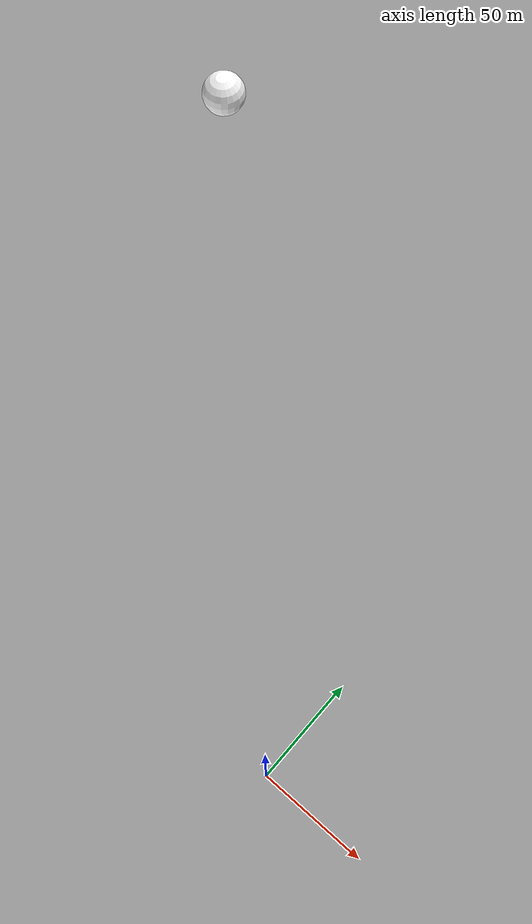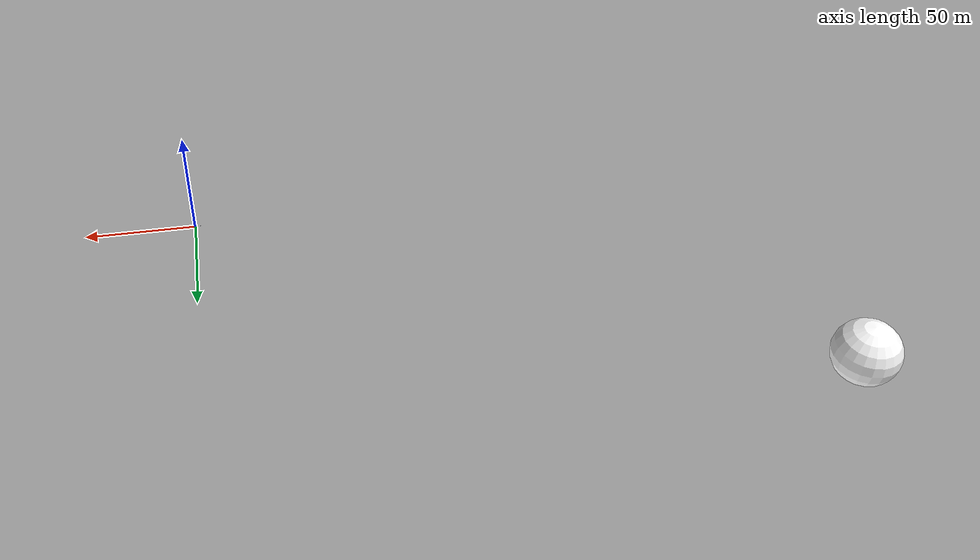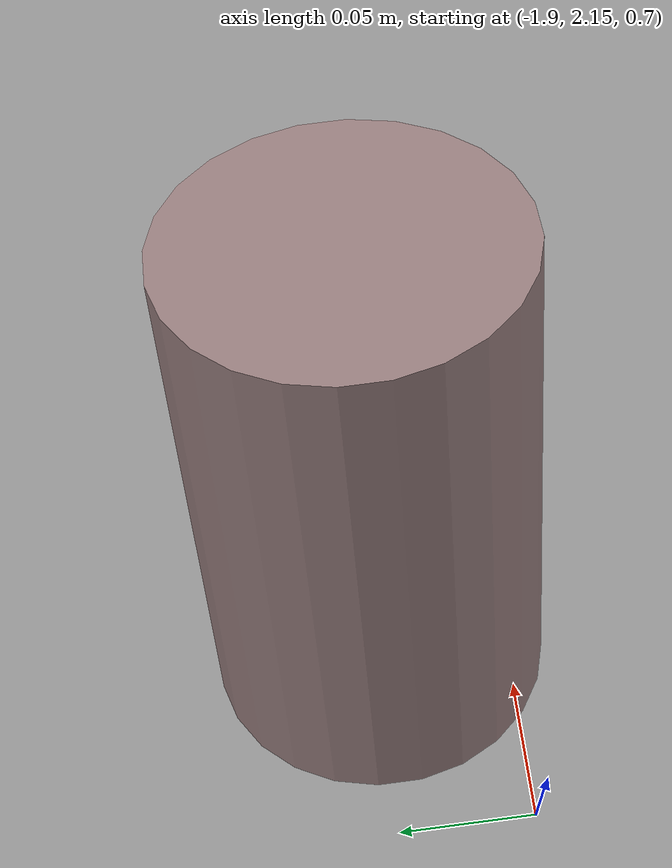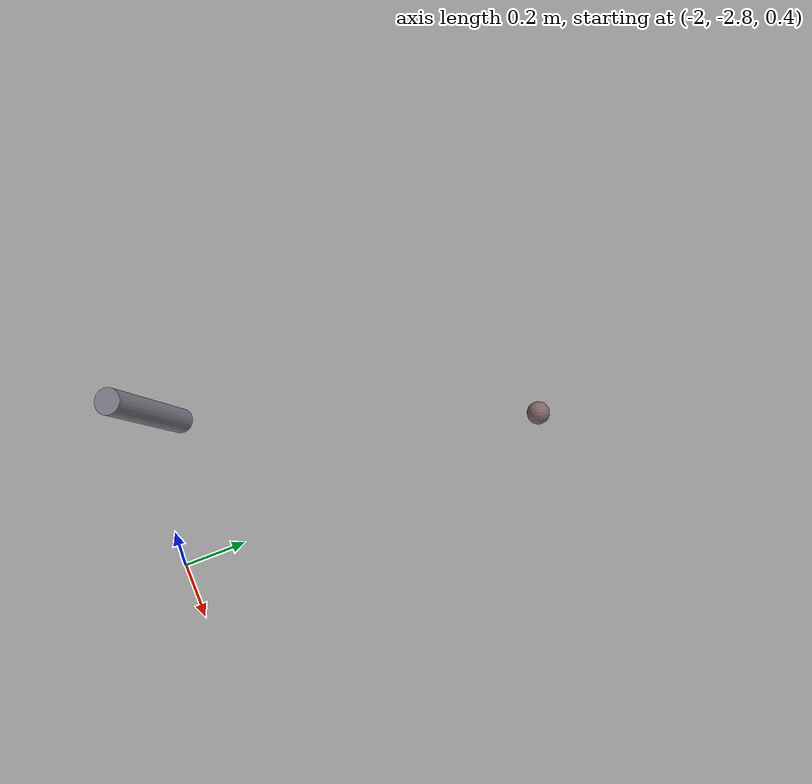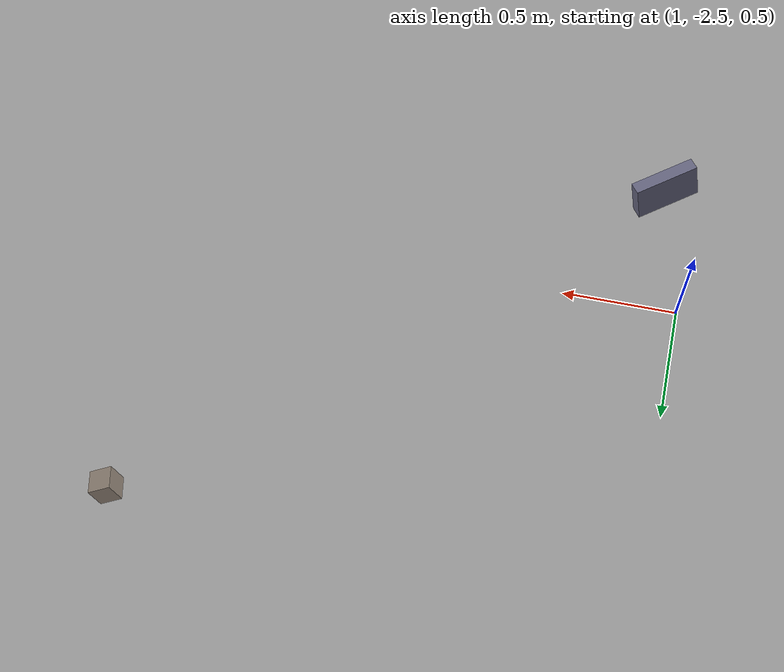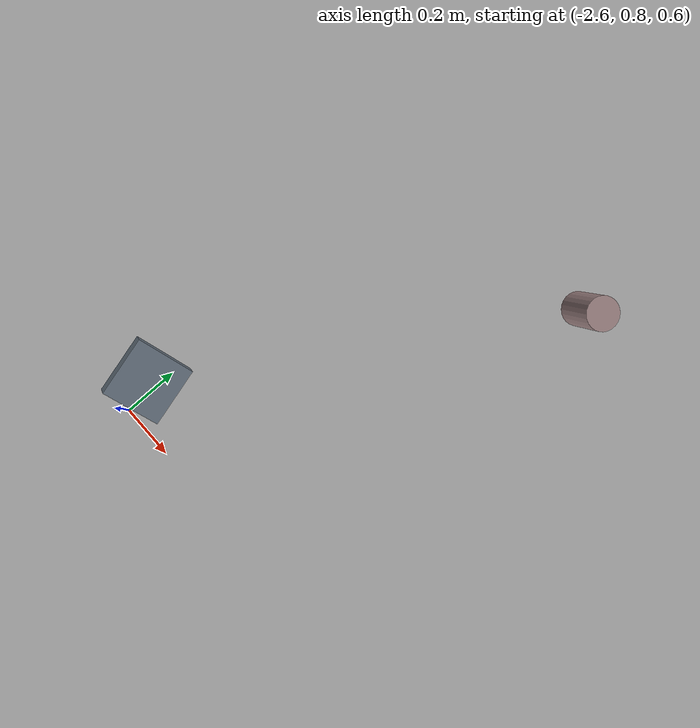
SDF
<sdf version="1.8">
 <world name="space_world">
  <gravity>0 0 0</gravity>
  <physics name="1ms" type="ignored">
   <max_step_size>0.001</max_step_size>
   <real_time_factor>1.0</real_time_factor>
   <real_time_update_rate>1000</real_time_update_rate>
  </physics>
  <scene>
   <ambient>0.4 0.4 0.4 1.0</ambient>
   <background>0.0 0.0 0.0 1.0</background>
   <grid>false</grid>
   <shadows>true</shadows>
  </scene>
  <plugin filename="gz-sim-physics-system" name="gz::sim::systems::Physics"/>
  <plugin filename="gz-sim-sensors-system" name="gz::sim::systems::Sensors">
   <render_engine>ogre2</render_engine>
  </plugin>
  <plugin filename="gz-sim-scene-broadcaster-system" name="gz::sim::systems::SceneBroadcaster"/>
  <plugin filename="gz-sim-user-commands-system" name="gz::sim::systems::UserCommands"/>
  <light type="directional" name="sun">
   <pose>-200 200 100 0 0 0</pose>
   <diffuse>1.0 1.0 1.0 1</diffuse>
   <specular>0.8 0.8 0.8 1</specular>
   <attenuation>
    <range>10000</range>
    <constant>1.0</constant>
    <linear>0.0</linear>
    <quadratic>0.0</quadratic>
   </attenuation>
   <direction>0.667 -0.667 -0.333</direction>
  </light>
  <model name="sun_visual">
   <static>true</static>
   <pose>-200 200 100 0 0 0</pose>
   <link name="link">
    <visual name="visual">
     <geometry><sphere><radius>10.0</radius></sphere></geometry>
     <material>
      <ambient>1 1 1 1</ambient>
      <diffuse>1 1 1 1</diffuse>
      <specular>1 1 1 1</specular>
      <pbr>
       <metal>
        <albedo_map>model://sun/materials/textures/sun_texture.jpg</albedo_map>
        <emissive_map>model://sun/materials/textures/sun_texture.jpg</emissive_map>
       </metal>
      </pbr>
     </material>
    </visual>
   </link>
  </model>
  <model name="debris_box_1">
   <pose>2.5 1.5 1.2 0.3 0.5 0.2</pose>
   <link name="link">
    <visual name="visual">
     <geometry><box><size>0.15 0.1 0.08</size></box></geometry>
     <material>
      <ambient>0.4 0.4 0.5 1</ambient>
      <diffuse>0.5 0.5 0.6 1</diffuse>
      <specular>0.8 0.8 0.9 1</specular>
      <emissive>0.1 0.1 0.1 1</emissive>
     </material>
    </visual>
    <collision name="collision"><geometry><box><size>0.15 0.1 0.08</size></box></geometry></collision>
    <inertial>
     <mass>0.5</mass>
     <inertia><ixx>0.0007</ixx><iyy>0.0012</iyy><izz>0.0014</izz><ixy>0</ixy><ixz>0</ixz><iyz>0</iyz></inertia>
    </inertial>
   </link>
  </model>
  <model name="debris_cylinder_1">
   <pose>-1.8 2.2 0.8 0.1 0.3 0.4</pose>
   <link name="link">
    <visual name="visual">
     <geometry><cylinder><radius>0.06</radius><length>0.2</length></cylinder></geometry>
     <material>
      <ambient>0.5 0.4 0.4 1</ambient>
      <diffuse>0.6 0.5 0.5 1</diffuse>
      <specular>0.7 0.7 0.8 1</specular>
      <emissive>0.1 0.1 0.1 1</emissive>
     </material>
    </visual>
    <collision name="collision">
     <geometry><cylinder><radius>0.06</radius><length>0.2</length></cylinder></geometry>
    </collision>
    <inertial>
     <mass>0.4</mass>
     <inertia><ixx>0.0017</ixx><iyy>0.0017</iyy><izz>0.0007</izz><ixy>0</ixy><ixz>0</ixz><iyz>0</iyz></inertia>
    </inertial>
   </link>
  </model>
  <model name="debris_panel_1">
   <pose>1.2 -2.5 1.5 0.2 0.1 0.6</pose>
   <link name="link">
    <visual name="visual">
     <geometry><box><size>0.25 0.05 0.15</size></box></geometry>
     <material>
      <ambient>0.3 0.3 0.4 1</ambient>
      <diffuse>0.4 0.4 0.5 1</diffuse>
      <specular>0.9 0.9 0.9 1</specular>
      <emissive>0.05 0.05 0.05 1</emissive>
     </material>
    </visual>
    <collision name="collision"><geometry><box><size>0.25 0.05 0.15</size></box></geometry></collision>
    <inertial>
     <mass>0.3</mass>
     <inertia><ixx>0.0006</ixx><iyy>0.0021</iyy><izz>0.0016</izz><ixy>0</ixy><ixz>0</ixz><iyz>0</iyz></inertia>
    </inertial>
   </link>
  </model>
  <model name="debris_sphere_1">
   <pose>-2.0 -1.5 0.5 0 0 0</pose>
   <link name="link">
    <visual name="visual">
     <geometry><sphere><radius>0.04</radius></sphere></geometry>
     <material>
      <ambient>0.4 0.3 0.3 1</ambient>
      <diffuse>0.5 0.4 0.4 1</diffuse>
      <specular>0.6 0.6 0.7 1</specular>
      <emissive>0.1 0.1 0.1 1</emissive>
     </material>
    </visual>
    <collision name="collision"><geometry><sphere><radius>0.04</radius></sphere></geometry></collision>
    <inertial>
     <mass>0.1</mass>
     <inertia>
      <ixx>0.000064</ixx>
      <iyy>0.000064</iyy>
      <izz>0.000064</izz>
      <ixy>0</ixy>
      <ixz>0</ixz>
      <iyz>0</iyz>
     </inertia>
    </inertial>
   </link>
  </model>
  <model name="debris_chunk_1">
   <pose>0.5 3.0 0.3 0.4 0.2 0.1</pose>
   <link name="link">
    <visual name="visual">
     <geometry><box><size>0.12 0.12 0.1</size></box></geometry>
     <material>
      <ambient>0.35 0.35 0.4 1</ambient>
      <diffuse>0.45 0.45 0.5 1</diffuse>
      <specular>0.7 0.7 0.8 1</specular>
      <emissive>0.08 0.08 0.08 1</emissive>
     </material>
    </visual>
    <collision name="collision"><geometry><box><size>0.12 0.12 0.1</size></box></geometry></collision>
    <inertial>
     <mass>0.4</mass>
     <inertia><ixx>0.0008</ixx><iyy>0.0008</iyy><izz>0.001</izz><ixy>0</ixy><ixz>0</ixz><iyz>0</iyz></inertia>
    </inertial>
   </link>
  </model>
  <model name="debris_rod_1">
   <pose>-1.5 -2.8 1.8 0.5 0.3 0.2</pose>
   <link name="link">
    <visual name="visual">
     <geometry><cylinder><radius>0.025</radius><length>0.3</length></cylinder></geometry>
     <material>
      <ambient>0.4 0.4 0.45 1</ambient>
      <diffuse>0.5 0.5 0.55 1</diffuse>
      <specular>0.8 0.8 0.85 1</specular>
      <emissive>0.1 0.1 0.1 1</emissive>
     </material>
    </visual>
    <collision name="collision">
     <geometry><cylinder><radius>0.025</radius><length>0.3</length></cylinder></geometry>
    </collision>
    <inertial>
     <mass>0.2</mass>
     <inertia><ixx>0.0015</ixx><iyy>0.0015</iyy><izz>0.0000625</izz><ixy>0</ixy><ixz>0</ixz><iyz>0</iyz></inertia>
    </inertial>
   </link>
  </model>
  <model name="debris_cube_1">
   <pose>3.2 -1.2 0.6 0.2 0.4 0.3</pose>
   <link name="link">
    <visual name="visual">
     <geometry><box><size>0.1 0.1 0.1</size></box></geometry>
     <material>
      <ambient>0.45 0.4 0.35 1</ambient>
      <diffuse>0.55 0.5 0.45 1</diffuse>
      <specular>0.75 0.75 0.8 1</specular>
      <emissive>0.1 0.1 0.1 1</emissive>
     </material>
    </visual>
    <collision name="collision"><geometry><box><size>0.1 0.1 0.1</size></box></geometry></collision>
    <inertial>
     <mass>0.3</mass>
     <inertia><ixx>0.0005</ixx><iyy>0.0005</iyy><izz>0.0005</izz><ixy>0</ixy><ixz>0</ixz><iyz>0</iyz></inertia>
    </inertial>
   </link>
  </model>
  <model name="debris_plate_1">
   <pose>-2.5 1.0 1.3 0.1 0.5 0.3</pose>
   <link name="link">
    <visual name="visual">
     <geometry><box><size>0.18 0.18 0.04</size></box></geometry>
     <material>
      <ambient>0.3 0.35 0.4 1</ambient>
      <diffuse>0.4 0.45 0.5 1</diffuse>
      <specular>0.85 0.85 0.9 1</specular>
      <emissive>0.05 0.05 0.05 1</emissive>
     </material>
    </visual>
    <collision name="collision"><geometry><box><size>0.18 0.18 0.04</size></box></geometry></collision>
    <inertial>
     <mass>0.2</mass>
     <inertia><ixx>0.0006</ixx><iyy>0.0006</iyy><izz>0.0001</izz><ixy>0</ixy><ixz>0</ixz><iyz>0</iyz></inertia>
    </inertial>
   </link>
  </model>
 </world>
</sdf>
